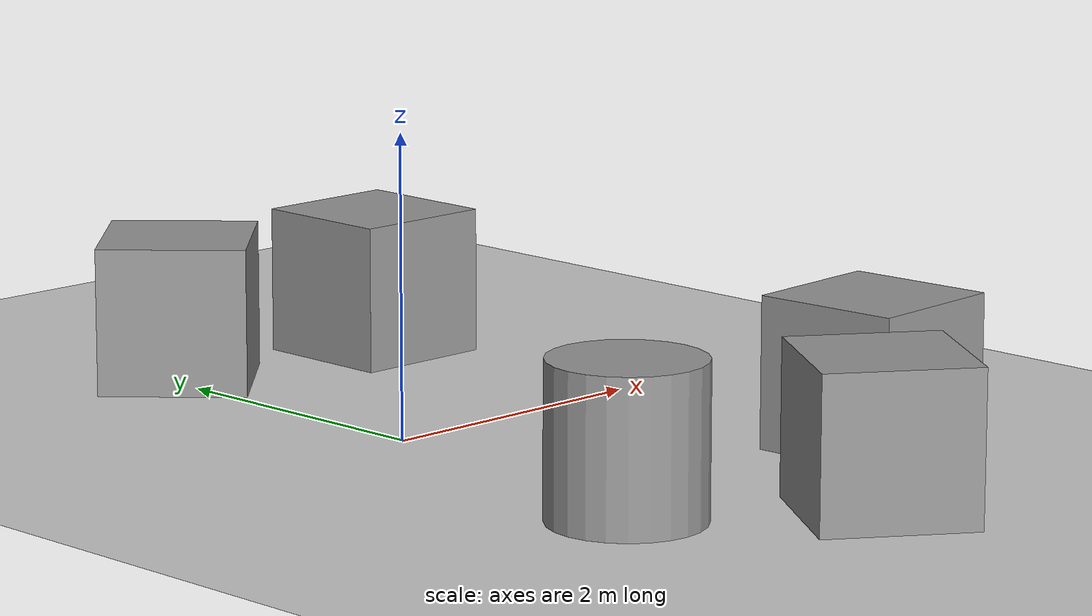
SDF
<sdf version="1.6">
 <world name="default">
  <light name="sun" type="directional">
   <pose>0 0 10 0 -0 0</pose>
   <diffuse>0.8 0.8 0.8 1</diffuse>
   <specular>0.2 0.2 0.2 1</specular>
   <attenuation>
    <range>1000</range>
    <constant>0.9</constant>
    <linear>0.01</linear>
    <quadratic>0.001</quadratic>
   </attenuation>
   <direction>-0.5 0.1 -0.9</direction>
  </light>
  <model name="ground_plane">
   <static>1</static>
   <link name="link">
    <collision name="collision">
     <geometry><plane><normal>0 0 1</normal><size>100 100</size></plane></geometry>
     <surface>
      <contact><collide_bitmask>65535</collide_bitmask></contact>
      <friction><ode><mu>100</mu><mu2>50</mu2></ode></friction>
     </surface>
    </collision>
    <visual name="visual">
     <cast_shadows>0</cast_shadows>
     <geometry><plane><normal>0 0 1</normal><size>100 100</size></plane></geometry>
     <material>
      <script><uri>file://media/materials/scripts/gazebo.material</uri><name>Gazebo/Grey</name></script>
     </material>
    </visual>
   </link>
  </model>
  <gravity>0 0 -9.8</gravity>
  <magnetic_field>6e-06 2.3e-05 -4.2e-05</magnetic_field>
  <atmosphere type="adiabatic"/>
  <physics name="default_physics" default="0" type="ode">
   <max_step_size>0.001</max_step_size>
   <real_time_factor>1</real_time_factor>
   <real_time_update_rate>1000</real_time_update_rate>
  </physics>
  <scene><ambient>0.4 0.4 0.4 1</ambient><background>0.7 0.7 0.7 1</background><shadows>1</shadows></scene>
  <audio><device>default</device></audio>
  <spherical_coordinates>
   <surface_model>EARTH_WGS84</surface_model>
   <latitude_deg>0</latitude_deg>
   <longitude_deg>0</longitude_deg>
   <elevation>0</elevation>
   <heading_deg>0</heading_deg>
  </spherical_coordinates>
  <model name="unit_box">
   <pose>0.088177 2.29048 0.5 0 0 -0.805689</pose>
   <link name="link">
    <inertial>
     <mass>1</mass>
     <inertia>
      <ixx>0.166667</ixx>
      <ixy>0</ixy>
      <ixz>0</ixz>
      <iyy>0.166667</iyy>
      <iyz>0</iyz>
      <izz>0.166667</izz>
     </inertia>
    </inertial>
    <collision name="collision"><geometry><box><size>1 1 1</size></box></geometry></collision>
    <visual name="visual">
     <geometry><box><size>1 1 1</size></box></geometry>
     <material>
      <script><name>Gazebo/Grey</name><uri>file://media/materials/scripts/gazebo.material</uri></script>
     </material>
    </visual>
   </link>
  </model>
  <model name="unit_box_0">
   <pose>1.64687 2.03104 0.499995 0 1e-05 0</pose>
   <link name="link">
    <inertial>
     <mass>1</mass>
     <inertia>
      <ixx>0.166667</ixx>
      <ixy>0</ixy>
      <ixz>0</ixz>
      <iyy>0.166667</iyy>
      <iyz>0</iyz>
      <izz>0.166667</izz>
     </inertia>
    </inertial>
    <collision name="collision"><geometry><box><size>1 1 1</size></box></geometry></collision>
    <visual name="visual">
     <geometry><box><size>1 1 1</size></box></geometry>
     <material>
      <script><name>Gazebo/Grey</name><uri>file://media/materials/scripts/gazebo.material</uri></script>
     </material>
    </visual>
   </link>
  </model>
  <model name="unit_box_1">
   <pose>2.00138 -2.21322 0.5 0 -0 0.062464</pose>
   <link name="link">
    <inertial>
     <mass>1</mass>
     <inertia>
      <ixx>0.166667</ixx>
      <ixy>0</ixy>
      <ixz>0</ixz>
      <iyy>0.166667</iyy>
      <iyz>0</iyz>
      <izz>0.166667</izz>
     </inertia>
    </inertial>
    <collision name="collision"><geometry><box><size>1 1 1</size></box></geometry></collision>
    <visual name="visual">
     <geometry><box><size>1 1 1</size></box></geometry>
     <material>
      <script><name>Gazebo/Grey</name><uri>file://media/materials/scripts/gazebo.material</uri></script>
     </material>
    </visual>
   </link>
  </model>
  <model name="unit_cylinder">
   <pose>-0.383973 -2.35451 0.499992 -3e-06 -4e-06 -0</pose>
   <link name="link">
    <inertial>
     <mass>1</mass>
     <inertia><ixx>0.145833</ixx><ixy>0</ixy><ixz>0</ixz><iyy>0.145833</iyy><iyz>0</iyz><izz>0.125</izz></inertia>
    </inertial>
    <collision name="collision">
     <geometry><cylinder><radius>0.5</radius><length>1</length></cylinder></geometry>
    </collision>
    <visual name="visual">
     <geometry><cylinder><radius>0.5</radius><length>1</length></cylinder></geometry>
     <material>
      <script><name>Gazebo/Grey</name><uri>file://media/materials/scripts/gazebo.material</uri></script>
     </material>
    </visual>
   </link>
  </model>
  <model name="unit_box_2">
   <pose>0.817862 -3.31012 0.499999 5e-06 4e-06 -0.604268</pose>
   <link name="link">
    <inertial>
     <mass>1</mass>
     <inertia>
      <ixx>0.166667</ixx>
      <ixy>0</ixy>
      <ixz>0</ixz>
      <iyy>0.166667</iyy>
      <iyz>0</iyz>
      <izz>0.166667</izz>
     </inertia>
    </inertial>
    <collision name="collision"><geometry><box><size>1 1 1</size></box></geometry></collision>
    <visual name="visual">
     <geometry><box><size>1 1 1</size></box></geometry>
     <material>
      <script><name>Gazebo/Grey</name><uri>file://media/materials/scripts/gazebo.material</uri></script>
     </material>
    </visual>
   </link>
  </model>
 </world>
</sdf>
